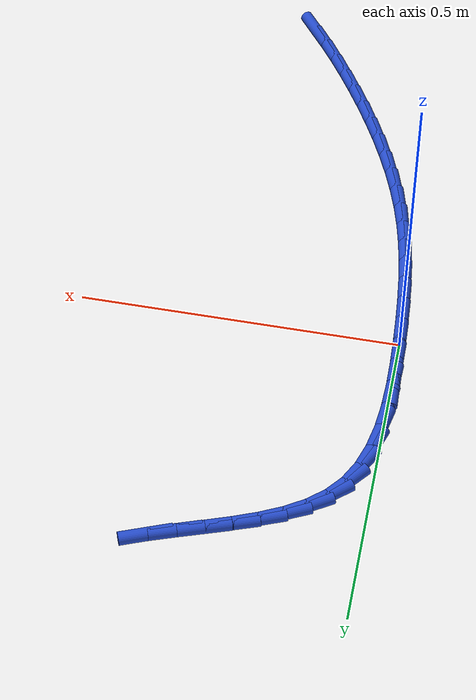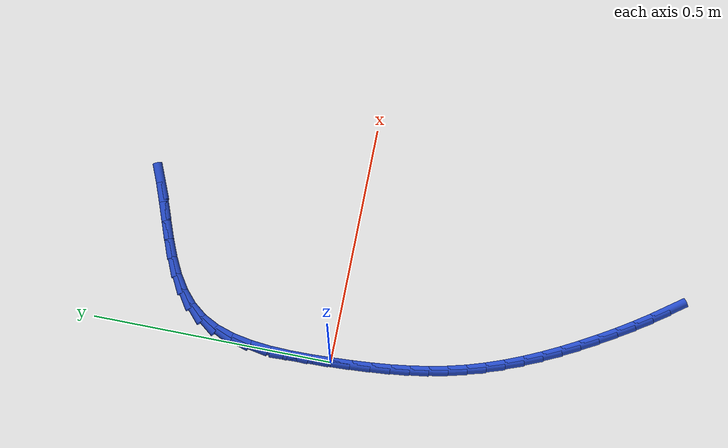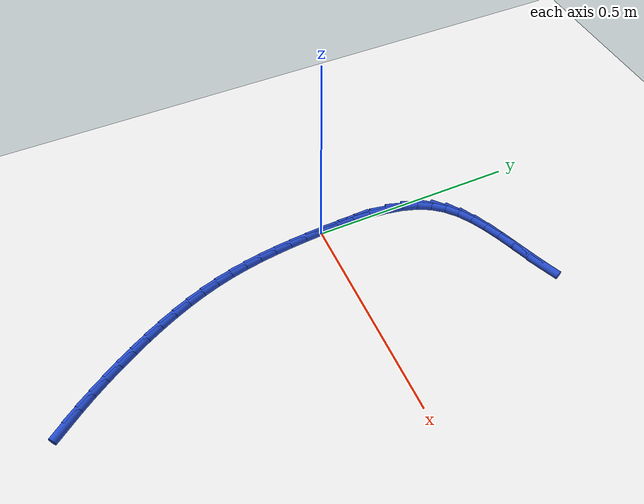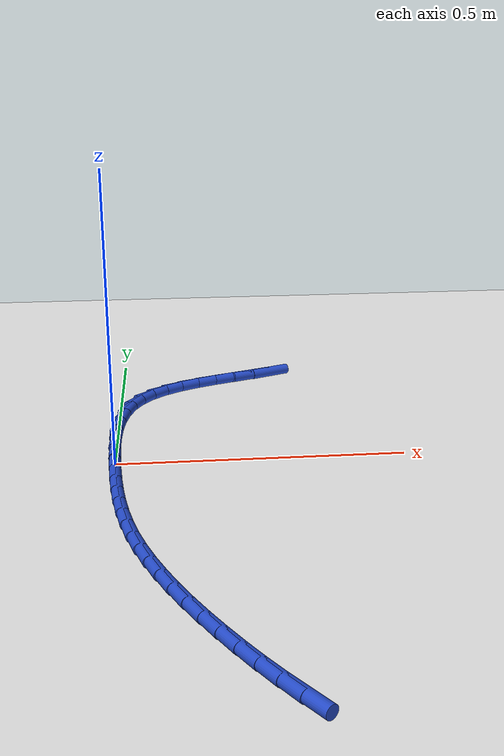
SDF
<sdf version="1.6">
 <world name="default">
  <model name="ground_plane">
   <static>1</static>
   <link name="link">
    <collision name="collision">
     <geometry><plane><normal>0 0 1</normal><size>100 100</size></plane></geometry>
     <surface><friction><ode><mu>100</mu><mu2>50</mu2></ode></friction></surface>
    </collision>
    <visual name="visual">
     <cast_shadows>0</cast_shadows>
     <geometry><plane><normal>0 0 1</normal><size>100 100</size></plane></geometry>
     <material>
      <script><uri>file://media/materials/scripts/gazebo.material</uri><name>Gazebo/WhiteGlow</name></script>
     </material>
    </visual>
   </link>
  </model>
  <model name="line">
   <link name="link_0">
    <pose>1.5612511283791264e-17 -2.0816681711721685e-17 0.01 0 1.57 -1.5320196866669449</pose>
    <collision name="collision">
     <geometry><cylinder><radius>0.01</radius><length>0.08</length></cylinder></geometry>
    </collision>
    <visual name="visual">
     <material>
      <script><name>Gazebo/Blue</name><uri>file://media/materials/scripts/gazebo.material</uri></script>
     </material>
     <geometry><cylinder><radius>0.01</radius><length>0.08</length></cylinder></geometry>
    </visual>
   </link>
   <link name="link_1">
    <pose>-0.001676079227338649 0.04320227516199466 0.01 0 1.57 -1.5604415413583341</pose>
    <collision name="collision">
     <geometry><cylinder><radius>0.01</radius><length>0.08</length></cylinder></geometry>
    </collision>
    <visual name="visual">
     <material>
      <script><name>Gazebo/Blue</name><uri>file://media/materials/scripts/gazebo.material</uri></script>
     </material>
     <geometry><cylinder><radius>0.01</radius><length>0.08</length></cylinder></geometry>
    </visual>
   </link>
   <link name="link_2">
    <pose>-0.002126900359094445 0.08673818634214743 0.01 0 1.57 1.5365452437830174</pose>
    <collision name="collision">
     <geometry><cylinder><radius>0.01</radius><length>0.08</length></cylinder></geometry>
    </collision>
    <visual name="visual">
     <material>
      <script><name>Gazebo/Blue</name><uri>file://media/materials/scripts/gazebo.material</uri></script>
     </material>
     <geometry><cylinder><radius>0.01</radius><length>0.08</length></cylinder></geometry>
    </visual>
   </link>
   <link name="link_3">
    <pose>-0.0006539540057294568 0.12972574147044572 0.01 0 1.57 1.4725692312627845</pose>
    <collision name="collision">
     <geometry><cylinder><radius>0.01</radius><length>0.08</length></cylinder></geometry>
    </collision>
    <visual name="visual">
     <material>
      <script><name>Gazebo/Blue</name><uri>file://media/materials/scripts/gazebo.material</uri></script>
     </material>
     <geometry><cylinder><radius>0.01</radius><length>0.08</length></cylinder></geometry>
    </visual>
   </link>
   <link name="link_4">
    <pose>0.003441269222294225 0.17128294847687703 0.01 0 1.57 1.3840309680759006</pose>
    <collision name="collision">
     <geometry><cylinder><radius>0.01</radius><length>0.08</length></cylinder></geometry>
    </collision>
    <visual name="visual">
     <material>
      <script><name>Gazebo/Blue</name><uri>file://media/materials/scripts/gazebo.material</uri></script>
     </material>
     <geometry><cylinder><radius>0.01</radius><length>0.08</length></cylinder></geometry>
    </visual>
   </link>
   <link name="link_5">
    <pose>0.010857278714514525 0.21052781529142867 0.01 0 1.57 1.263633450753926</pose>
    <collision name="collision">
     <geometry><cylinder><radius>0.01</radius><length>0.08</length></cylinder></geometry>
    </collision>
    <visual name="visual">
     <material>
      <script><name>Gazebo/Blue</name><uri>file://media/materials/scripts/gazebo.material</uri></script>
     </material>
     <geometry><cylinder><radius>0.01</radius><length>0.08</length></cylinder></geometry>
    </visual>
   </link>
   <link name="link_6">
    <pose>0.022292583860469346 0.24657834984408805 0.01 0 1.57 1.1030038749452376</pose>
    <collision name="collision">
     <geometry><cylinder><radius>0.01</radius><length>0.08</length></cylinder></geometry>
    </collision>
    <visual name="visual">
     <material>
      <script><name>Gazebo/Blue</name><uri>file://media/materials/scripts/gazebo.material</uri></script>
     </material>
     <geometry><cylinder><radius>0.01</radius><length>0.08</length></cylinder></geometry>
    </visual>
   </link>
   <link name="link_7">
    <pose>0.0384456940496966 0.27855256006484264 0.01 0 1.57 0.904512055702413</pose>
    <collision name="collision">
     <geometry><cylinder><radius>0.01</radius><length>0.08</length></cylinder></geometry>
    </collision>
    <visual name="visual">
     <material>
      <script><name>Gazebo/Blue</name><uri>file://media/materials/scripts/gazebo.material</uri></script>
     </material>
     <geometry><cylinder><radius>0.01</radius><length>0.08</length></cylinder></geometry>
    </visual>
   </link>
   <link name="link_8">
    <pose>0.05984616607619703 0.3057718689551457 0.01 0 1.57 0.7178373368281373</pose>
    <collision name="collision">
     <geometry><cylinder><radius>0.01</radius><length>0.08</length></cylinder></geometry>
    </collision>
    <visual name="visual">
     <material>
      <script><name>Gazebo/Blue</name><uri>file://media/materials/scripts/gazebo.material</uri></script>
     </material>
     <geometry><cylinder><radius>0.01</radius><length>0.08</length></cylinder></geometry>
    </visual>
   </link>
   <link name="link_9">
    <pose>0.08608634790699869 0.328686077567766 0.01 0 1.57 0.5698859152394647</pose>
    <collision name="collision">
     <geometry><cylinder><radius>0.01</radius><length>0.08</length></cylinder></geometry>
    </collision>
    <visual name="visual">
     <material>
      <script><name>Gazebo/Blue</name><uri>file://media/materials/scripts/gazebo.material</uri></script>
     </material>
     <geometry><cylinder><radius>0.01</radius><length>0.08</length></cylinder></geometry>
    </visual>
   </link>
   <link name="link_10">
    <pose>0.11643546304189384 0.348134021444029 0.01 0 1.57 0.4626364875719824</pose>
    <collision name="collision">
     <geometry><cylinder><radius>0.01</radius><length>0.08</length></cylinder></geometry>
    </collision>
    <visual name="visual">
     <material>
      <script><name>Gazebo/Blue</name><uri>file://media/materials/scripts/gazebo.material</uri></script>
     </material>
     <geometry><cylinder><radius>0.01</radius><length>0.08</length></cylinder></geometry>
    </visual>
   </link>
   <link name="link_11">
    <pose>0.1501624326077812 0.3649549001753272 0.01 0 1.57 0.39191305188179215</pose>
    <collision name="collision">
     <geometry><cylinder><radius>0.01</radius><length>0.08</length></cylinder></geometry>
    </collision>
    <visual name="visual">
     <material>
      <script><name>Gazebo/Blue</name><uri>file://media/materials/scripts/gazebo.material</uri></script>
     </material>
     <geometry><cylinder><radius>0.01</radius><length>0.08</length></cylinder></geometry>
    </visual>
   </link>
   <link name="link_12">
    <pose>0.18653617773155967 0.37998791335305304 0.01 0 1.57 0.35247773712628455</pose>
    <collision name="collision">
     <geometry><cylinder><radius>0.01</radius><length>0.08</length></cylinder></geometry>
    </collision>
    <visual name="visual">
     <material>
      <script><name>Gazebo/Blue</name><uri>file://media/materials/scripts/gazebo.material</uri></script>
     </material>
     <geometry><cylinder><radius>0.01</radius><length>0.08</length></cylinder></geometry>
    </visual>
   </link>
   <link name="link_13">
    <pose>0.22482561954012792 0.39407226056859923 0.01 0 1.57 0.3402577865344801</pose>
    <collision name="collision">
     <geometry><cylinder><radius>0.01</radius><length>0.08</length></cylinder></geometry>
    </collision>
    <visual name="visual">
     <material>
      <script><name>Gazebo/Blue</name><uri>file://media/materials/scripts/gazebo.material</uri></script>
     </material>
     <geometry><cylinder><radius>0.01</radius><length>0.08</length></cylinder></geometry>
    </visual>
   </link>
   <link name="link_14">
    <pose>0.2642996791603847 0.40804714141335807 0.01 0 1.57 0.3528679087457212</pose>
    <collision name="collision">
     <geometry><cylinder><radius>0.01</radius><length>0.08</length></cylinder></geometry>
    </collision>
    <visual name="visual">
     <material>
      <script><name>Gazebo/Blue</name><uri>file://media/materials/scripts/gazebo.material</uri></script>
     </material>
     <geometry><cylinder><radius>0.01</radius><length>0.08</length></cylinder></geometry>
    </visual>
   </link>
   <link name="link_15">
    <pose>0.3042272777192289 0.42275175547872207 0.01 0 1.57 0.38946471869403404</pose>
    <collision name="collision">
     <geometry><cylinder><radius>0.01</radius><length>0.08</length></cylinder></geometry>
    </collision>
    <visual name="visual">
     <material>
      <script><name>Gazebo/Blue</name><uri>file://media/materials/scripts/gazebo.material</uri></script>
     </material>
     <geometry><cylinder><radius>0.01</radius><length>0.08</length></cylinder></geometry>
    </visual>
   </link>
   <link name="link_202">
    <pose>0.24175196069175206 -0.6650393632092566 0.01 0 1.57 -0.9384938706401543</pose>
    <collision name="collision">
     <geometry><cylinder><radius>0.01</radius><length>0.08</length></cylinder></geometry>
    </collision>
    <visual name="visual">
     <material>
      <script><name>Gazebo/Blue</name><uri>file://media/materials/scripts/gazebo.material</uri></script>
     </material>
     <geometry><cylinder><radius>0.01</radius><length>0.08</length></cylinder></geometry>
    </visual>
   </link>
   <link name="link_203">
    <pose>0.21860208444187185 -0.6334417831268604 0.01 0 1.57 -0.9722881288655402</pose>
    <collision name="collision">
     <geometry><cylinder><radius>0.01</radius><length>0.08</length></cylinder></geometry>
    </collision>
    <visual name="visual">
     <material>
      <script><name>Gazebo/Blue</name><uri>file://media/materials/scripts/gazebo.material</uri></script>
     </material>
     <geometry><cylinder><radius>0.01</radius><length>0.08</length></cylinder></geometry>
    </visual>
   </link>
   <link name="link_204">
    <pose>0.19639051665992832 -0.6008710667464665 0.01 0 1.57 -1.0019915005431035</pose>
    <collision name="collision">
     <geometry><cylinder><radius>0.01</radius><length>0.08</length></cylinder></geometry>
    </collision>
    <visual name="visual">
     <material>
      <script><name>Gazebo/Blue</name><uri>file://media/materials/scripts/gazebo.material</uri></script>
     </material>
     <geometry><cylinder><radius>0.01</radius><length>0.08</length></cylinder></geometry>
    </visual>
   </link>
   <link name="link_205">
    <pose>0.17500243240001112 -0.5674147371025802 0.01 0 1.57 -1.0276715438720025</pose>
    <collision name="collision">
     <geometry><cylinder><radius>0.01</radius><length>0.08</length></cylinder></geometry>
    </collision>
    <visual name="visual">
     <material>
      <script><name>Gazebo/Blue</name><uri>file://media/materials/scripts/gazebo.material</uri></script>
     </material>
     <geometry><cylinder><radius>0.01</radius><length>0.08</length></cylinder></geometry>
    </visual>
   </link>
   <link name="link_206">
    <pose>0.1543235348838712 -0.5331602972547899 0.01 0 1.57 -1.0514249332205627</pose>
    <collision name="collision">
     <geometry><cylinder><radius>0.01</radius><length>0.08</length></cylinder></geometry>
    </collision>
    <visual name="visual">
     <material>
      <script><name>Gazebo/Blue</name><uri>file://media/materials/scripts/gazebo.material</uri></script>
     </material>
     <geometry><cylinder><radius>0.01</radius><length>0.08</length></cylinder></geometry>
    </visual>
   </link>
   <link name="link_207">
    <pose>0.13433107819206244 -0.49819178787564183 0.01 0 1.57 -1.077697862586009</pose>
    <collision name="collision">
     <geometry><cylinder><radius>0.01</radius><length>0.08</length></cylinder></geometry>
    </collision>
    <visual name="visual">
     <material>
      <script><name>Gazebo/Blue</name><uri>file://media/materials/scripts/gazebo.material</uri></script>
     </material>
     <geometry><cylinder><radius>0.01</radius><length>0.08</length></cylinder></geometry>
    </visual>
   </link>
   <link name="link_208">
    <pose>0.11519735928558177 -0.4625858732574896 0.01 0 1.57 -1.1072844323808413</pose>
    <collision name="collision">
     <geometry><cylinder><radius>0.01</radius><length>0.08</length></cylinder></geometry>
    </collision>
    <visual name="visual">
     <material>
      <script><name>Gazebo/Blue</name><uri>file://media/materials/scripts/gazebo.material</uri></script>
     </material>
     <geometry><cylinder><radius>0.01</radius><length>0.08</length></cylinder></geometry>
    </visual>
   </link>
   <link name="link_209">
    <pose>0.09711969358579839 -0.42641827151266853 0.01 0 1.57 -1.1404763114646594</pose>
    <collision name="collision">
     <geometry><cylinder><radius>0.01</radius><length>0.08</length></cylinder></geometry>
    </collision>
    <visual name="visual">
     <material>
      <script><name>Gazebo/Blue</name><uri>file://media/materials/scripts/gazebo.material</uri></script>
     </material>
     <geometry><cylinder><radius>0.01</radius><length>0.08</length></cylinder></geometry>
    </visual>
   </link>
   <link name="link_210">
    <pose>0.08029539651408235 -0.38976470075351516 0.01 0 1.57 -1.1776073868674874</pose>
    <collision name="collision">
     <geometry><cylinder><radius>0.01</radius><length>0.08</length></cylinder></geometry>
    </collision>
    <visual name="visual">
     <material>
      <script><name>Gazebo/Blue</name><uri>file://media/materials/scripts/gazebo.material</uri></script>
     </material>
     <geometry><cylinder><radius>0.01</radius><length>0.08</length></cylinder></geometry>
    </visual>
   </link>
   <link name="link_211">
    <pose>0.06492178349180347 -0.35270087909236586 0.01 0 1.57 -1.2190478972026335</pose>
    <collision name="collision">
     <geometry><cylinder><radius>0.01</radius><length>0.08</length></cylinder></geometry>
    </collision>
    <visual name="visual">
     <material>
      <script><name>Gazebo/Blue</name><uri>file://media/materials/scripts/gazebo.material</uri></script>
     </material>
     <geometry><cylinder><radius>0.01</radius><length>0.08</length></cylinder></geometry>
    </visual>
   </link>
   <link name="link_212">
    <pose>0.05119616994033132 -0.31530252464155595 0.01 0 1.57 -1.2651919720626916</pose>
    <collision name="collision">
     <geometry><cylinder><radius>0.01</radius><length>0.08</length></cylinder></geometry>
    </collision>
    <visual name="visual">
     <material>
      <script><name>Gazebo/Blue</name><uri>file://media/materials/scripts/gazebo.material</uri></script>
     </material>
     <geometry><cylinder><radius>0.01</radius><length>0.08</length></cylinder></geometry>
    </visual>
   </link>
   <link name="link_213">
    <pose>0.039315785076504836 -0.27764530901862106 0.01 0 1.57 -1.3144855895977048</pose>
    <collision name="collision">
     <geometry><cylinder><radius>0.01</radius><length>0.08</length></cylinder></geometry>
    </collision>
    <visual name="visual">
     <material>
      <script><name>Gazebo/Blue</name><uri>file://media/materials/scripts/gazebo.material</uri></script>
     </material>
     <geometry><cylinder><radius>0.01</radius><length>0.08</length></cylinder></geometry>
    </visual>
   </link>
   <link name="link_214">
    <pose>0.0293857374477605 -0.23975521814287265 0.01 0 1.57 -1.3610216035875988</pose>
    <collision name="collision">
     <geometry><cylinder><radius>0.01</radius><length>0.08</length></cylinder></geometry>
    </collision>
    <visual name="visual">
     <material>
      <script><name>Gazebo/Blue</name><uri>file://media/materials/scripts/gazebo.material</uri></script>
     </material>
     <geometry><cylinder><radius>0.01</radius><length>0.08</length></cylinder></geometry>
    </visual>
   </link>
   <link name="link_215">
    <pose>0.02124394350293552 -0.20151412667103308 0.01 0 1.57 -1.4029422108960572</pose>
    <collision name="collision">
     <geometry><cylinder><radius>0.01</radius><length>0.08</length></cylinder></geometry>
    </collision>
    <visual name="visual">
     <material>
      <script><name>Gazebo/Blue</name><uri>file://media/materials/scripts/gazebo.material</uri></script>
     </material>
     <geometry><cylinder><radius>0.01</radius><length>0.08</length></cylinder></geometry>
    </visual>
   </link>
   <link name="link_216">
    <pose>0.014680152412383997 -0.162777930021088 0.01 0 1.57 -1.4395928728671246</pose>
    <collision name="collision">
     <geometry><cylinder><radius>0.01</radius><length>0.08</length></cylinder></geometry>
    </collision>
    <visual name="visual">
     <material>
      <script><name>Gazebo/Blue</name><uri>file://media/materials/scripts/gazebo.material</uri></script>
     </material>
     <geometry><cylinder><radius>0.01</radius><length>0.08</length></cylinder></geometry>
    </visual>
   </link>
   <link name="link_217">
    <pose>0.009484113346460536 -0.12340252361102602 0.01 0 1.57 -1.4705688884371964</pose>
    <collision name="collision">
     <geometry><cylinder><radius>0.01</radius><length>0.08</length></cylinder></geometry>
    </collision>
    <visual name="visual">
     <material>
      <script><name>Gazebo/Blue</name><uri>file://media/materials/scripts/gazebo.material</uri></script>
     </material>
     <geometry><cylinder><radius>0.01</radius><length>0.08</length></cylinder></geometry>
    </visual>
   </link>
   <link name="link_218">
    <pose>0.0054455754755192145 -0.0832438028588331 0.01 0 1.57 -1.4956986400559298</pose>
    <collision name="collision">
     <geometry><cylinder><radius>0.01</radius><length>0.08</length></cylinder></geometry>
    </collision>
    <visual name="visual">
     <material>
      <script><name>Gazebo/Blue</name><uri>file://media/materials/scripts/gazebo.material</uri></script>
     </material>
     <geometry><cylinder><radius>0.01</radius><length>0.08</length></cylinder></geometry>
    </visual>
   </link>
   <link name="link_219">
    <pose>0.00235428796991431 -0.04215766318249597 0.01 0 1.57 -1.5150094314913307</pose>
    <collision name="collision">
     <geometry><cylinder><radius>0.01</radius><length>0.08</length></cylinder></geometry>
    </collision>
    <visual name="visual">
     <material>
      <script><name>Gazebo/Blue</name><uri>file://media/materials/scripts/gazebo.material</uri></script>
     </material>
     <geometry><cylinder><radius>0.01</radius><length>0.08</length></cylinder></geometry>
    </visual>
   </link>
   <link name="link_220">
    <pose>3.361026734705064e-17 -3.0531133177191805e-16 0.01 0 1.57 -1.528686105458197</pose>
    <collision name="collision">
     <geometry><cylinder><radius>0.01</radius><length>0.08</length></cylinder></geometry>
    </collision>
    <visual name="visual">
     <material>
      <script><name>Gazebo/Blue</name><uri>file://media/materials/scripts/gazebo.material</uri></script>
     </material>
     <geometry><cylinder><radius>0.01</radius><length>0.08</length></cylinder></geometry>
    </visual>
   </link>
   <link name="link_221">
    <pose>-0.0018275392638691906 0.04337329127066396 0.01 0 1.57 -1.5370300634360248</pose>
    <collision name="collision">
     <geometry><cylinder><radius>0.01</radius><length>0.08</length></cylinder></geometry>
    </collision>
    <visual name="visual">
     <material>
      <script><name>Gazebo/Blue</name><uri>file://media/materials/scripts/gazebo.material</uri></script>
     </material>
     <geometry><cylinder><radius>0.01</radius><length>0.08</length></cylinder></geometry>
    </visual>
   </link>
   <link name="link_222">
    <pose>-0.00333858065133928 0.08810631521151427 0.01 0 1.57 -1.5329218099001853</pose>
    <collision name="collision">
     <geometry><cylinder><radius>0.01</radius><length>0.08</length></cylinder></geometry>
    </collision>
    <visual name="visual">
     <material>
      <script><name>Gazebo/Blue</name><uri>file://media/materials/scripts/gazebo.material</uri></script>
     </material>
     <geometry><cylinder><radius>0.01</radius><length>0.08</length></cylinder></geometry>
    </visual>
   </link>
  </model>
 </world>
</sdf>
